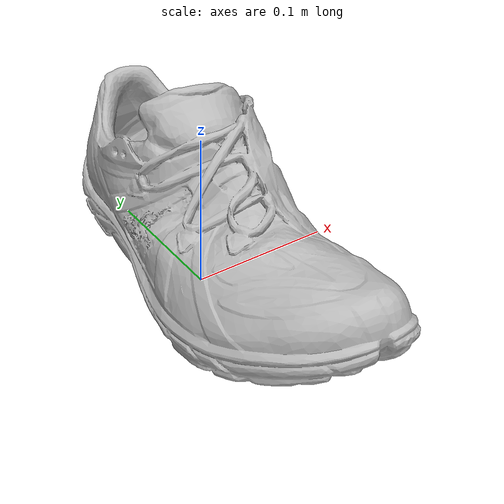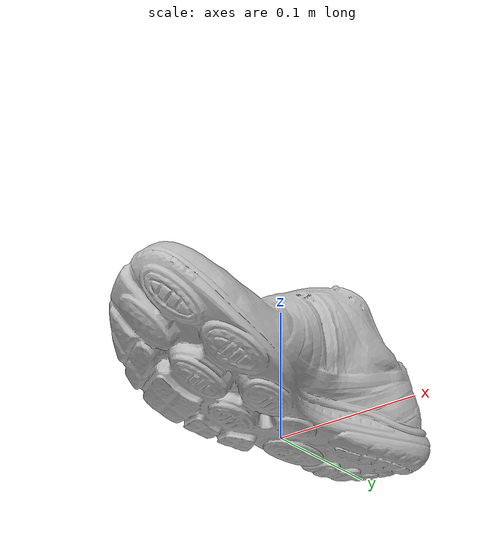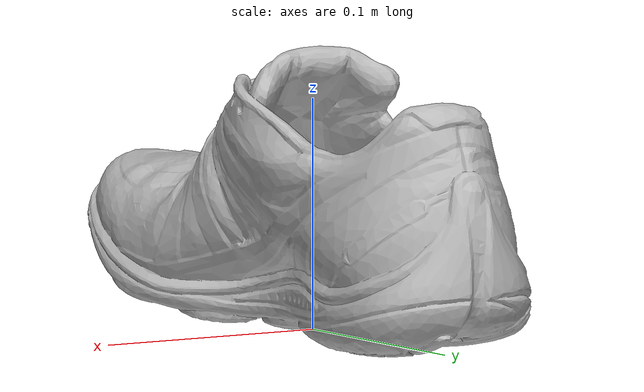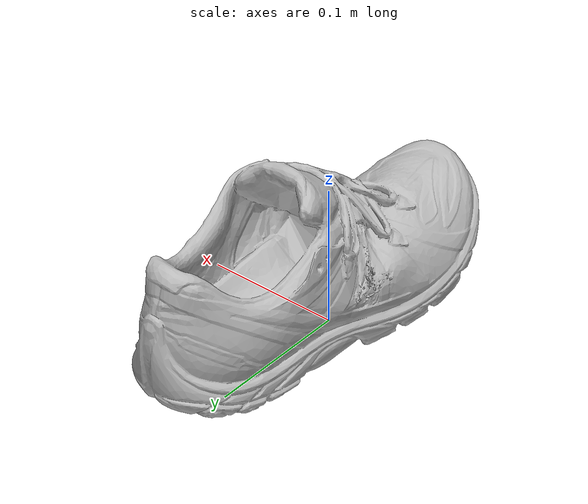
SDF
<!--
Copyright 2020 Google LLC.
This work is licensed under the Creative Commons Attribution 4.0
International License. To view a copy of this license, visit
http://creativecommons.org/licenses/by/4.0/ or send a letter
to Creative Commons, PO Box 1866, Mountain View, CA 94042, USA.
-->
<?xml version="1.0" ?>
<sdf version="1.6">
  <model name="PureConnect_2_Color_FernNightlifeSilverBlack_Size_70_5w0BYsiogeV">
    <link name="link_0">
      <visual name="visual">
        <geometry>
          <mesh>
            <uri>meshes/model.obj</uri>
          </mesh>
        </geometry>
      </visual>
      <collision name="collision_0">
        <geometry>
          <mesh>
            <uri>meshes/model.obj</uri>
          </mesh>
        </geometry>
      </collision>
    </link>
  </model>
</sdf>
